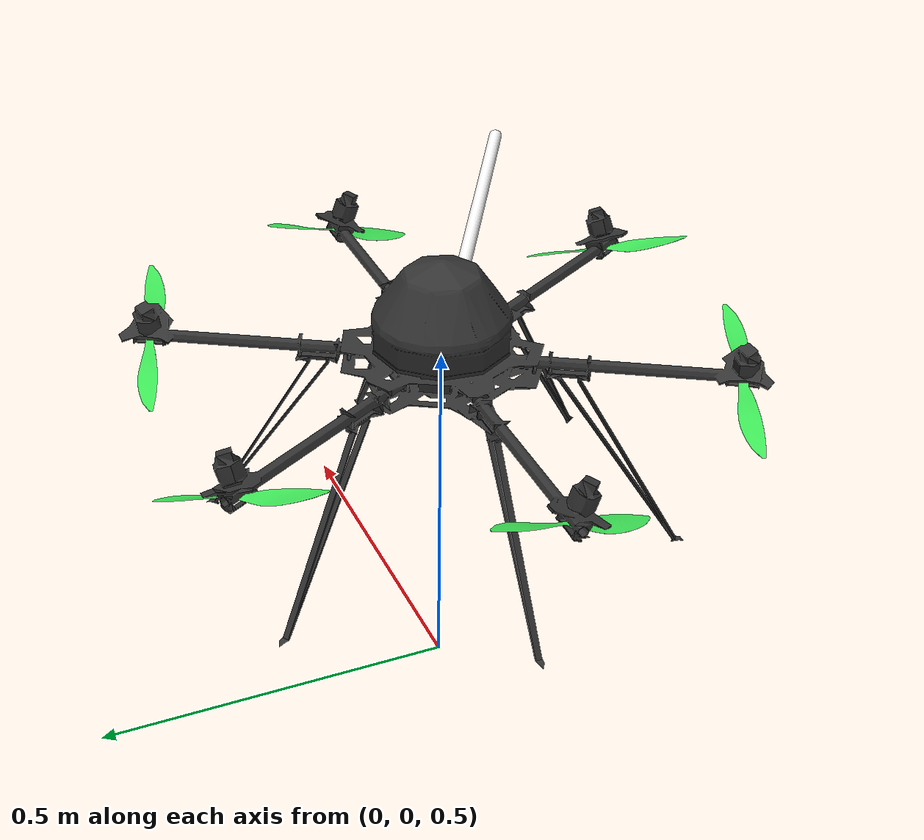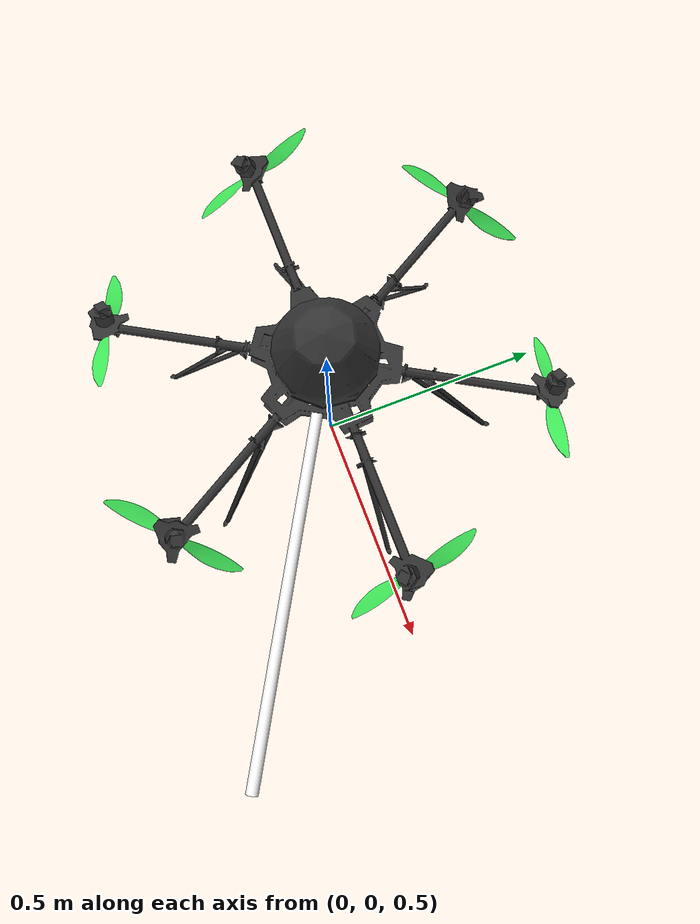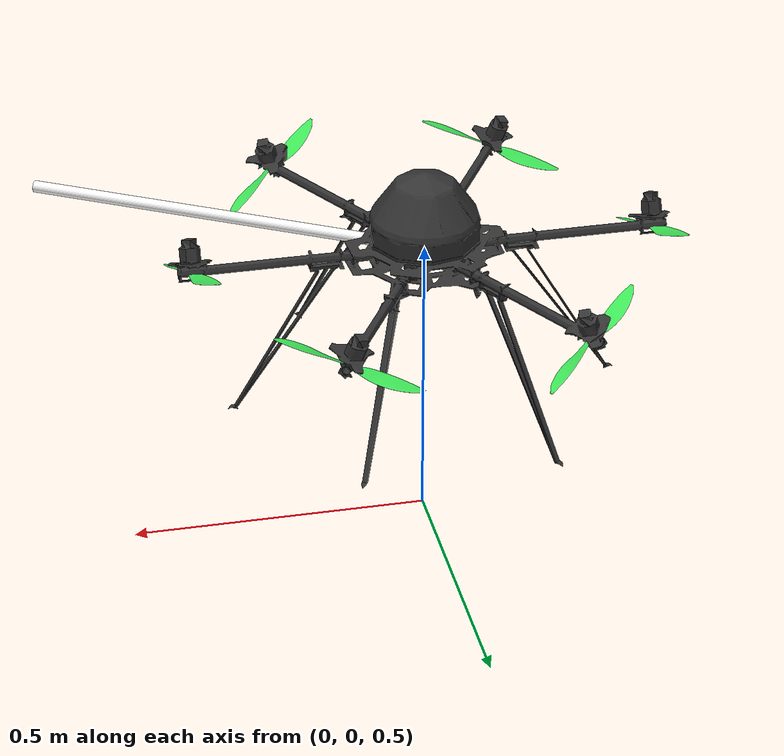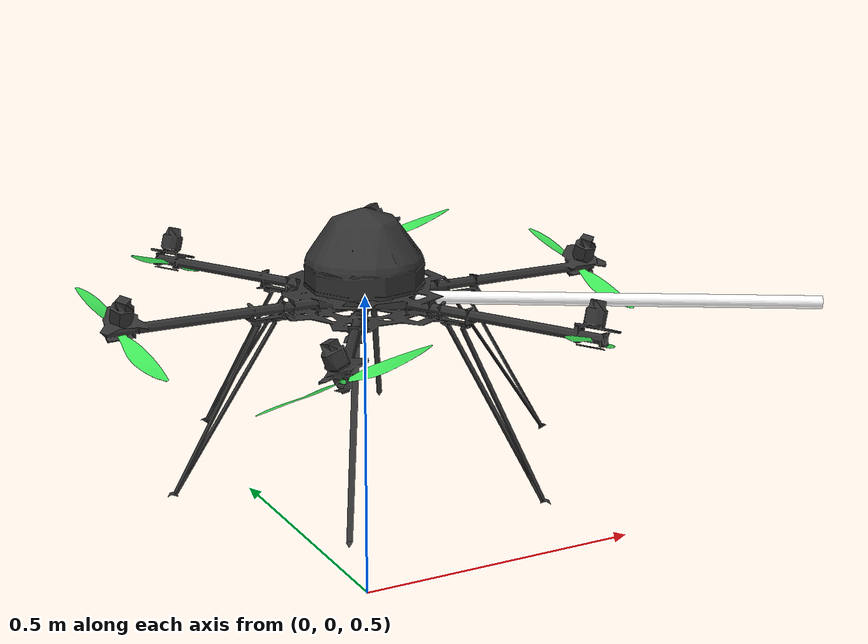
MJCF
<mujoco model="FTA_drone">
    <compiler angle="radian" assetdir="assets" eulerseq="XYZ" autolimits="true"/>
    <option gravity="0 0 -9.81" timestep="0.002" density="1.225" viscosity="1.48e-5"/>

    <asset>
        <material name="grey" rgba="0.2 0.2 0.2 1"/>
        <material name="white" rgba="1 1 1 1"/>
        <material name="black" rgba="0.241 0.90 0.34 1"/>
        <mesh name="base" file="base.obj" scale="0.001 0.001 0.001"/>
        <mesh name="prop" file="prop.obj" scale="0.001 0.001 0.001"/>
    </asset>

    <worldbody>
        <body pos="0 0 1" euler="0 0 0">
            <joint type="free"/>
            <inertial pos="0 0 0" mass="2" diaginertia="0.06185585085 0.46467853407 0.47162119244"/>
            <geom type="mesh" mesh="base" material="grey"/>
            <geom type="cylinder" size="0.01 0.3475" pos="0.300943827 -0.17375 0.0" euler="-2.61799 1.5708 0" material = "white"/>
            <body name="prop1" pos="0.38998 0 0" euler="0.34906585 0 0">
                <joint name="prop1" type="hinge" axis="0 0 1"/>
                <geom type="mesh" mesh="prop" material="black"/>
            </body>
            <body name="prop2" pos="0.195 0.3377 0" euler="-0.34906585 0 1.0472">
                <joint name="prop2" type="hinge" axis="0 0 1"/>
                <geom type="mesh" mesh="prop" material="black"/>
            </body>
            <body name="prop3" pos="-0.195 0.3377 0" euler="0.34906585 0 2.0944">
                <joint name="prop3" type="hinge" axis="0 0 1"/>
                <geom type="mesh" mesh="prop" material="black"/>
            </body>
            <body name="prop4" pos="-0.38998 0 0" euler="0.34906585 0 0">
                <joint name="prop4" type="hinge" axis="0 0 1"/>
                <geom type="mesh" mesh="prop" material="black"/>
            </body>
            <body name="prop5" pos="-0.195 -0.3377 0" euler="-0.34906585 0 1.0472">
                <joint name="prop5" type="hinge" axis="0 0 1"/>
                <geom type="mesh" mesh="prop" material="black"/>
            </body>
            <body name="prop6" pos="0.195 -0.3377 0" euler="0.34906585 0 2.0944">
                <joint name="prop6" type="hinge" axis="0 0 1"/>
                <geom type="mesh" mesh="prop" material="black"/>
            </body>
        </body>
    </worldbody>

</mujoco>
